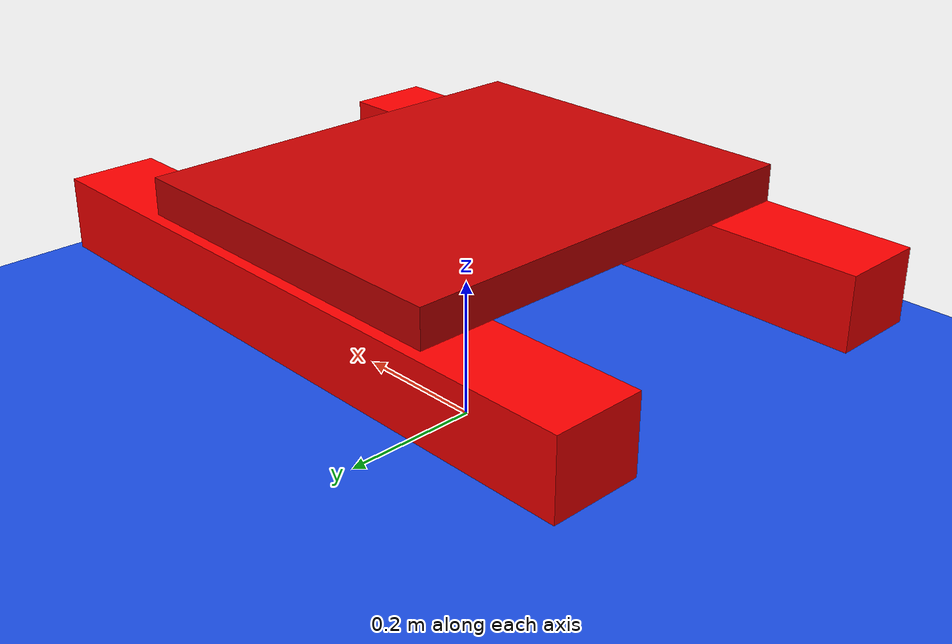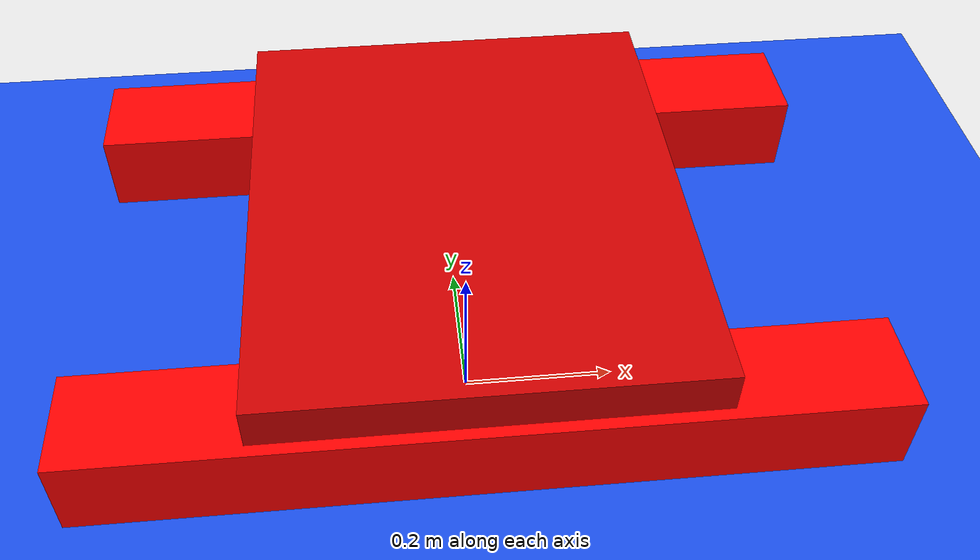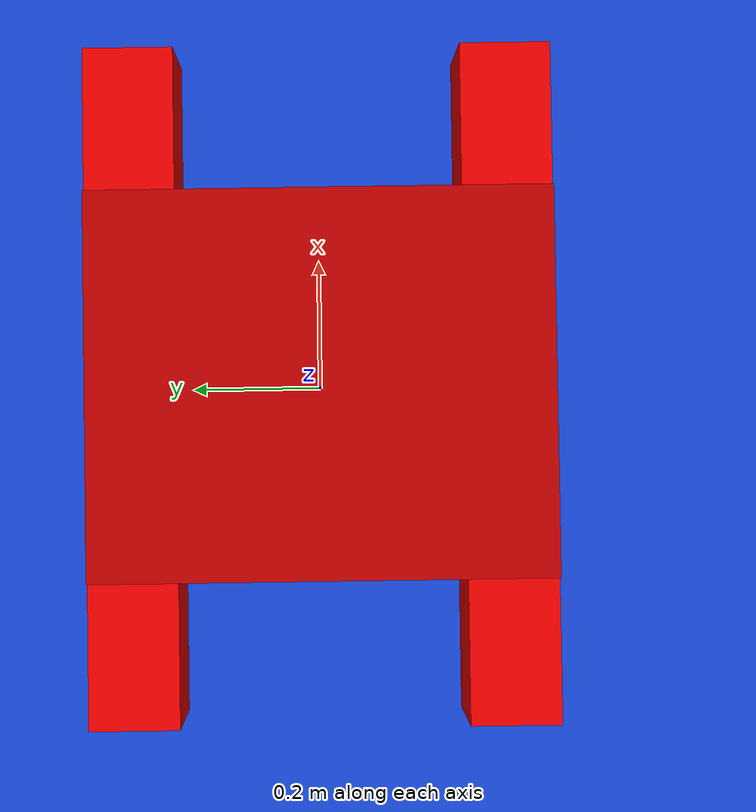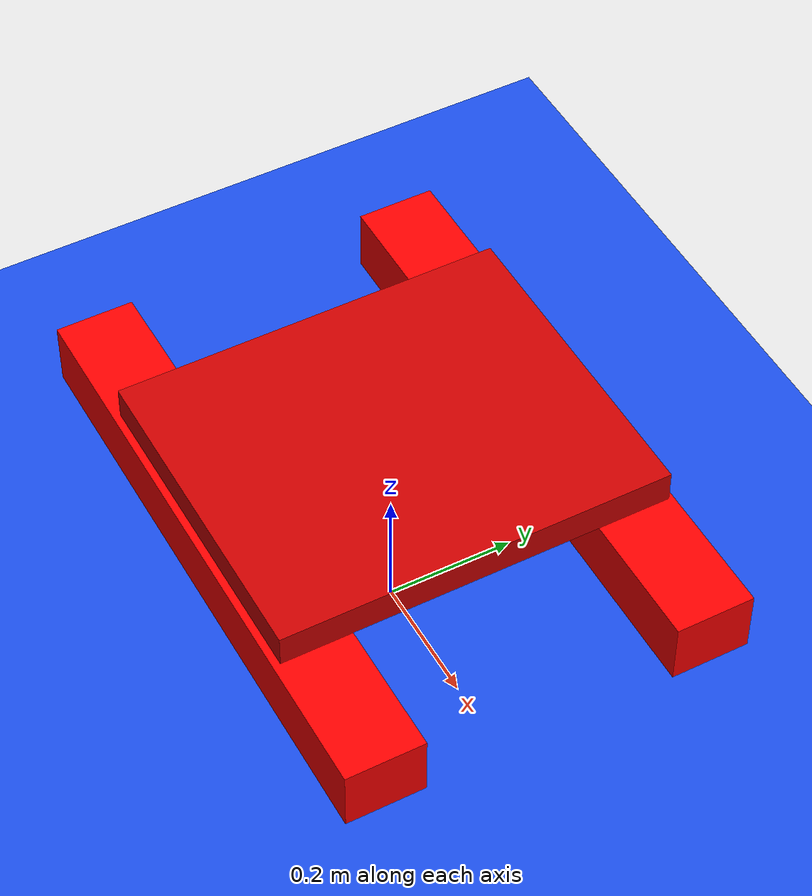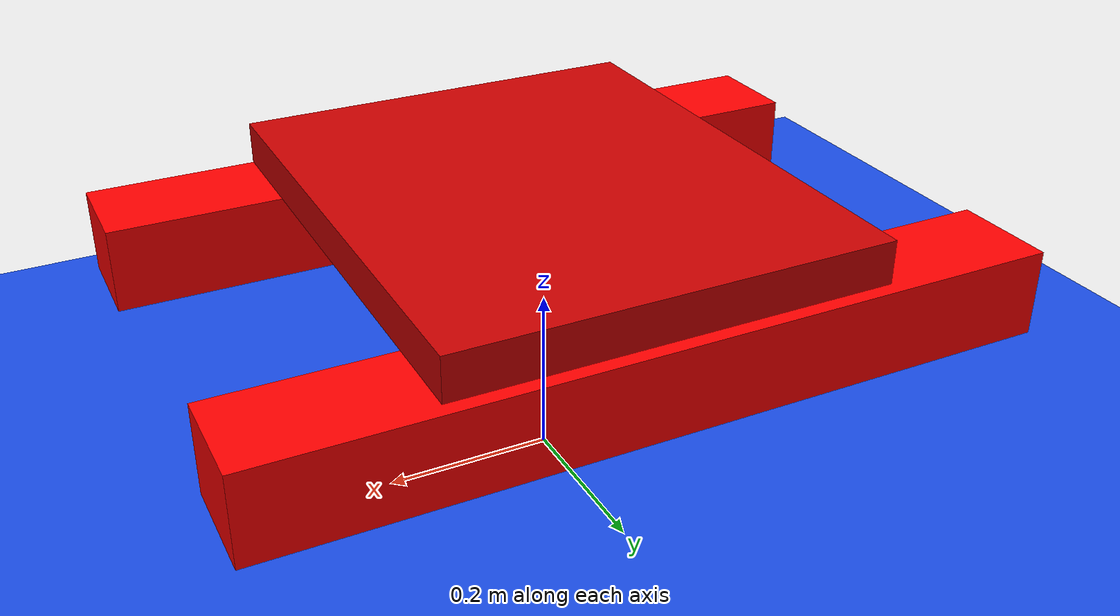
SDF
<sdf version="1.8">
  <world name="ocean_world">
    <gravity>0 0 -9.81</gravity>
    <scene>
      <ambient>0.4 0.4 0.4 1</ambient>
      <shadows>true</shadows>
    </scene>

    <!-- Sun / directional light -->
    <light name="sun" type="directional">
      <cast_shadows>true</cast_shadows>
      <pose>0 0 10 0 0 0</pose>
      <diffuse>1 1 1 1</diffuse>
      <specular>0.1 0.1 0.1 1</specular>
      <direction>-0.5 0.5 -1</direction>
      <attenuation>
        <range>100</range>
        <linear>0.0</linear>
        <constant>1.0</constant>
        <quadratic>0.0</quadratic>
      </attenuation>
    </light>

    <!-- Water plane (solid blue) -->
    <model name="water_plane">
      <static>true</static>
      <link name="water_link">
        <visual name="water_visual">
          <geometry><plane><size>1000 1000</size></plane></geometry>
          <material>
            <!-- ambient = how bright without light; diffuse = lit color -->
            <ambient>0.05 0.15 0.6 1</ambient>
            <diffuse>0.1 0.3 0.9 1</diffuse>
            <specular>0.05 0.05 0.1 1</specular>
          </material>
        </visual>
        <collision name="water_collision">
          <geometry><plane><size>1000 1000</size></plane></geometry>
          <surface><contact><collide_without_contact>true</collide_without_contact></contact></surface>
        </collision>
      </link>
    </model>

    <!-- Keep your boat include -->
    <include>
      <uri>model://nd_boat</uri>
      <name>nd_boat</name>
      <pose>0 0 0.25 0 0 0</pose>
    </include>
  </world>
</sdf>

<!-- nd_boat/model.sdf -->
<sdf version="1.8">
  <model name="nd_boat">
    <!-- Model pose: start slightly above z=0 so it can settle into the water -->
    <pose>0 0 0.25 0 0 0</pose>
    <static>false</static>

    <!-- ===================== LEFT PONTOON ===================== -->
    <link name="pontoon_left">
      <pose>0 0.25 0 0 0 0</pose>

      <!-- Inertial properties -->
      <inertial>
        <mass>6.0</mass>
        <inertia>
          <ixx>0.15</ixx><iyy>0.50</iyy><izz>0.60</izz>
          <ixy>0</ixy><ixz>0</ixz><iyz>0</iyz>
        </inertia>
      </inertial>

      <!-- Collision geometry (physics shape) -->
      <collision name="col_left">
        <geometry><box><size>0.9 0.12 0.10</size></box></geometry>
      </collision>

      <!-- Visual geometry (rendered shape) -->
      <visual name="vis_left">
        <geometry><box><size>0.9 0.12 0.10</size></box></geometry>
        <material>
          <!-- ambient: how bright it looks without direct light -->
          <ambient>0.40 0.00 0.00 1</ambient>
          <!-- diffuse: main color under light -->
          <diffuse>1.00 0.00 0.00 1</diffuse>
          <!-- specular: highlight color/strength -->
          <specular>0.20 0.10 0.10 1</specular>
        </material>
      </visual>

      <!-- Buoyancy / hydrodynamics / thruster (adjust filenames to your system) -->
      <plugin name="buoy_l" filename="libignition-gazebo6-buoyancy-system.so">
        <fluid_density>997.0</fluid_density>
      </plugin>

      <plugin name="hydro_l" filename="libignition-gazebo6-hydrodynamics-system.so">
        <!-- x, y, z linear drag -->
        <linear_drag>2.0 8.0 30.0</linear_drag>
        <!-- roll, pitch, yaw angular drag -->
        <angular_drag>0.2 0.2 0.4</angular_drag>
      </plugin>

      <plugin name="thruster_l" filename="libignition-gazebo6-thruster-system.so">
        <link_name>pontoon_left</link_name>
        <topic>/nd/left/thrust</topic>
        <gain>1.0</gain>
        <axis>1 0 0</axis>
      </plugin>
    </link>

    <!-- ===================== RIGHT PONTOON ===================== -->
    <link name="pontoon_right">
      <pose>0 -0.25 0 0 0 0</pose>

      <inertial>
        <mass>6.0</mass>
        <inertia>
          <ixx>0.15</ixx><iyy>0.50</iyy><izz>0.60</izz>
          <ixy>0</ixy><ixz>0</ixz><iyz>0</iyz>
        </inertia>
      </inertial>

      <collision name="col_right">
        <geometry><box><size>0.9 0.12 0.10</size></box></geometry>
      </collision>

      <visual name="vis_right">
        <geometry><box><size>0.9 0.12 0.10</size></box></geometry>
        <material>
          <ambient>0.40 0.00 0.00 1</ambient>
          <diffuse>1.00 0.00 0.00 1</diffuse>
          <specular>0.20 0.10 0.10 1</specular>
        </material>
      </visual>

      <plugin name="buoy_r" filename="libignition-gazebo6-buoyancy-system.so">
        <fluid_density>997.0</fluid_density>
      </plugin>

      <plugin name="hydro_r" filename="libignition-gazebo6-hydrodynamics-system.so">
        <linear_drag>2.0 8.0 30.0</linear_drag>
        <angular_drag>0.2 0.2 0.4</angular_drag>
      </plugin>

      <plugin name="thruster_r" filename="libignition-gazebo6-thruster-system.so">
        <link_name>pontoon_right</link_name>
        <topic>/nd/right/thrust</topic>
        <gain>1.0</gain>
        <axis>1 0 0</axis>
      </plugin>
    </link>

    <!-- ===================== BRIDGE (ties pontoons) ===================== -->
    <link name="bridge">
      <pose>0 0 0.08 0 0 0</pose>

      <inertial>
        <mass>3.0</mass>
        <inertia>
          <ixx>0.05</ixx><iyy>0.20</iyy><izz>0.22</izz>
          <ixy>0</ixy><ixz>0</ixz><iyz>0</iyz>
        </inertia>
      </inertial>

      <collision name="col_bridge">
        <geometry><box><size>0.5 0.6 0.05</size></box></geometry>
      </collision>

      <visual name="vis_bridge">
        <geometry><box><size>0.5 0.6 0.05</size></box></geometry>
        <material>
          <ambient>0.20 0.00 0.00 1</ambient>
          <diffuse>0.80 0.00 0.00 1</diffuse>
          <specular>0.20 0.10 0.10 1</specular>
        </material>
      </visual>
    </link>

    <!-- Weld joints to keep the three links rigidly connected -->
    <joint name="weld_l" type="fixed">
      <parent>bridge</parent>
      <child>pontoon_left</child>
    </joint>

    <joint name="weld_r" type="fixed">
      <parent>bridge</parent>
      <child>pontoon_right</child>
    </joint>
  </model>
</sdf>
